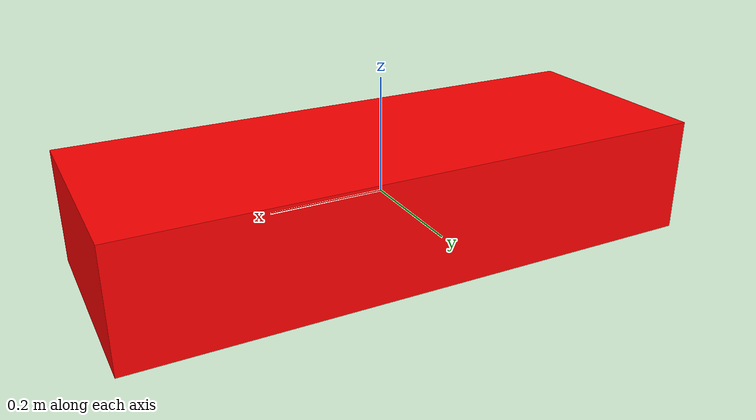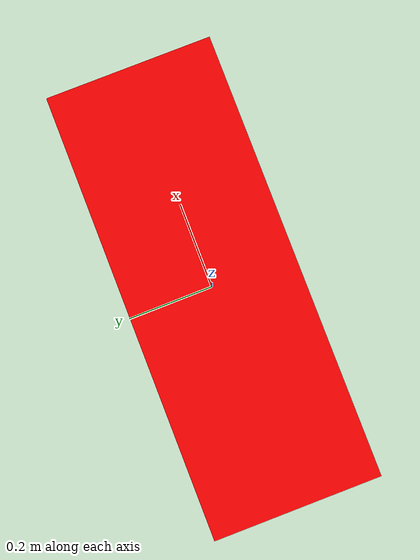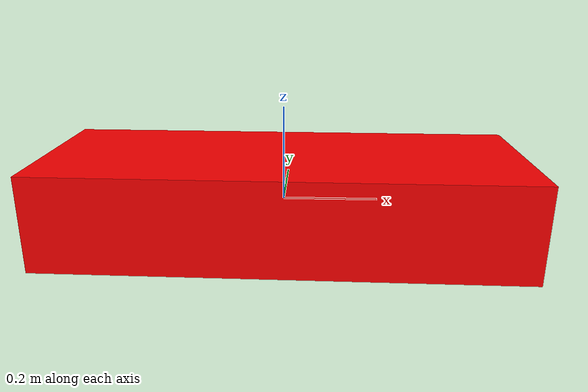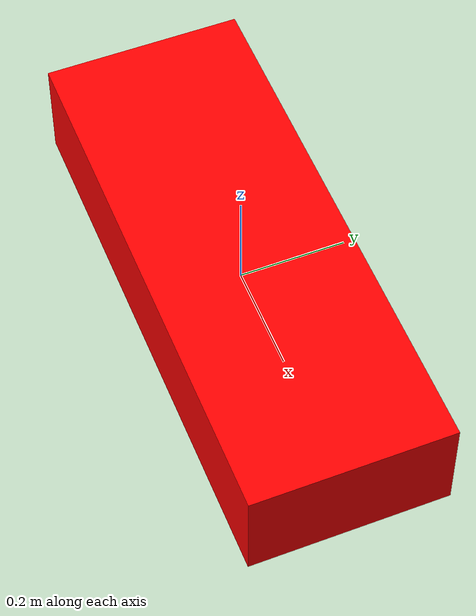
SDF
<?xml version="1.0" ?>
<sdf version="1.4">
    <model name="fixed_box">
        <static>false</static>
        <link name="link">
            <inertial>
                <mass>10000</mass>
                <inertia>
                    <ixx>10000.0</ixx>
                    <ixy>0</ixy>
                    <ixz>0</ixz>
                    <iyy>10000.0</iyy>
                    <iyz>0</iyz>
                    <izz>10000.0</izz>
                </inertia>
            </inertial>
            <collision name="collision">
                <pose>0 0 0 0 0 0</pose>
                <geometry>
                    <box>
                        <size>1.000000 0.373868 0.200000</size>
                    </box>
                </geometry>
                <surface>
                    <bounce>
                        <restitution_coefficient>0</restitution_coefficient>
                        <threshold>0</threshold>
                    </bounce>
                    <friction>
                        <ode>
                            <mu>0.100000</mu>
                            <mu2>0.100000</mu2>
                            <slip1>0.0</slip1>
                            <slip2>0.0</slip2>
                        </ode>
                    </friction>
		    <contact>
            		<ode>
              		    <soft_cfm>0.4</soft_cfm>
              		    <soft_erp>0.6</soft_erp>
           		</ode>
          	    </contact>
                </surface>-->
            </collision>
            <visual name="visual">
                <pose>0 0 0 0 0 0</pose>
                <material>
                    <diffuse>1.0 0.0 0.0 1</diffuse>
                </material>
                <geometry>
                    <box>
                        <size>1.000000 0.373868 0.200000</size>
                    </box>
                </geometry>
            </visual>
        </link>
    </model>
</sdf>
